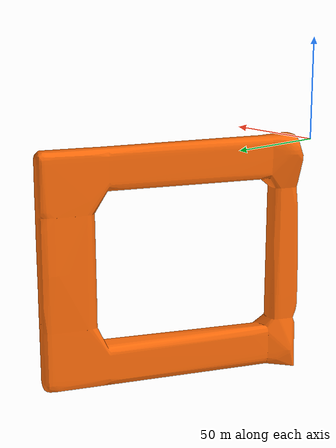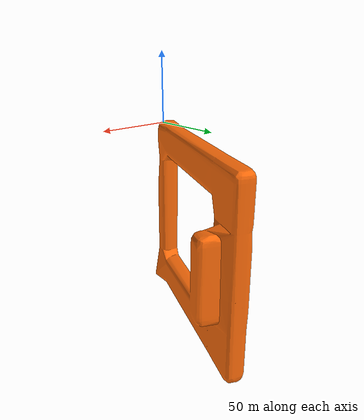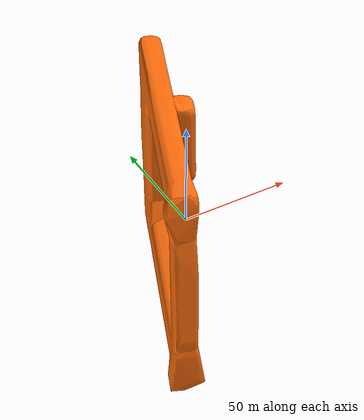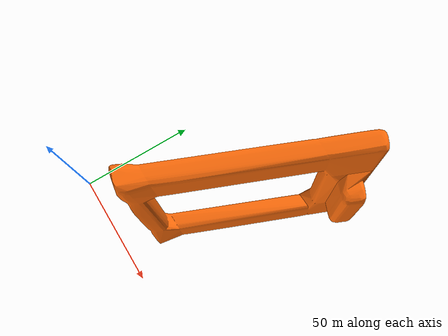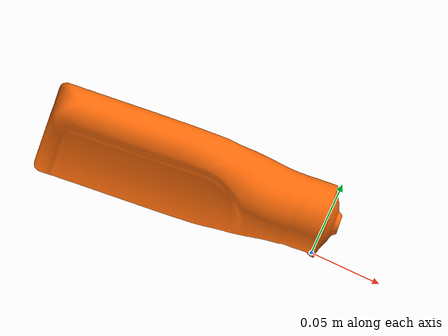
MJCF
<mujoco model="box">
  <compiler angle="radian" meshdir="."/>

  <asset>
    <mesh name="bottom_watertight_tiny" content_type="model/obj" file="bottom_watertight_tiny.obj"/>
    <mesh name="top_watertight_tiny" content_type="model/obj" file="top_watertight_tiny.obj"/>
  </asset>

  <worldbody>
    <!-- Arctic Box (articulated with revolute joint) -->
    <!-- Collision filtering: Prevent self-collision between bottom and top -->
    <!-- Bottom=type2, Top=type4. Both only collide with type1 (floor/robot) -->
    <body name="bottom">
      <inertial pos="0.06401037 0.12394632 0.07233545" mass="0.9641835" fullinertia="0.01740937 0.01853028 0.00957994 -0.00410050 0.00006425 -0.00009072"/>
      <geom name="bottom_geom" type="mesh" rgba="1 0.423529 0.0392157 1" mesh="bottom_watertight_tiny" contype="2" conaffinity="1"/>
      <body name="top">
        <inertial pos="0.112183 0.0712945 0.0730111" quat="0.405227 0.00403576 0.00592529 0.914188" mass="0.13" diaginertia="0.00249554 0.00154448 0.000968024"/>
        <joint name="rotation" pos="0 0 0" axis="0 0 -1" range="0 2.6" actuatorfrcrange="-50 50" damping="0.01" frictionloss="0.0" armature="0.1"/>
        <geom name="top_geom" type="mesh" rgba="1 0.423529 0.0392157 1" mesh="top_watertight_tiny" contype="4" conaffinity="1"/>
      </body>
    </body>
  </worldbody>
</mujoco>

<!-- From genesis urdf: -->
